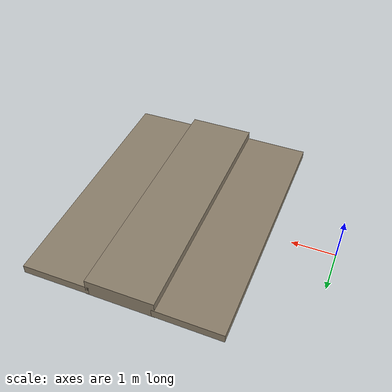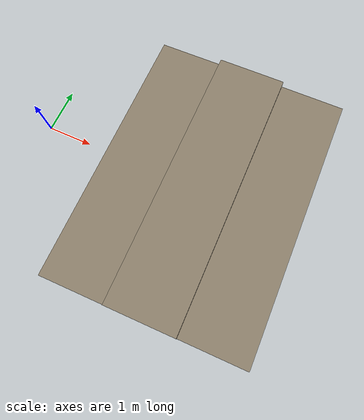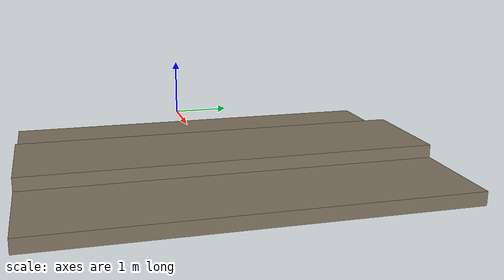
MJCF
<mujoco model="terrain slope_15deg">
  <!-- 15 degree ramp up to 0.4 m and down (scripts/make_terrain_benchmark.py) -->
  <asset>
    <material name="terrain" rgba="0.55 0.5 0.42 1"/>
  </asset>
  <worldbody>
    <geom name="ramp0" type="box" pos="2.2723 0.0000 0.1034" size="0.7727 3.0000 0.1000" euler="0.00000 -0.26180 0.00000" material="terrain" contype="1" conaffinity="1" condim="3" friction="1.0 0.5 0.1"/>
    <geom name="ramp1" type="box" pos="5.2133 0.0000 0.1034" size="0.7727 3.0000 0.1000" euler="0.00000 0.26180 0.00000" material="terrain" contype="1" conaffinity="1" condim="3" friction="1.0 0.5 0.1"/>
    <geom name="ramp_top" type="box" pos="3.7428 0.0000 0.2000" size="0.7700 3.0000 0.2000" material="terrain" contype="1" conaffinity="1" condim="3" friction="1.0 0.5 0.1"/>
  </worldbody>
</mujoco>
